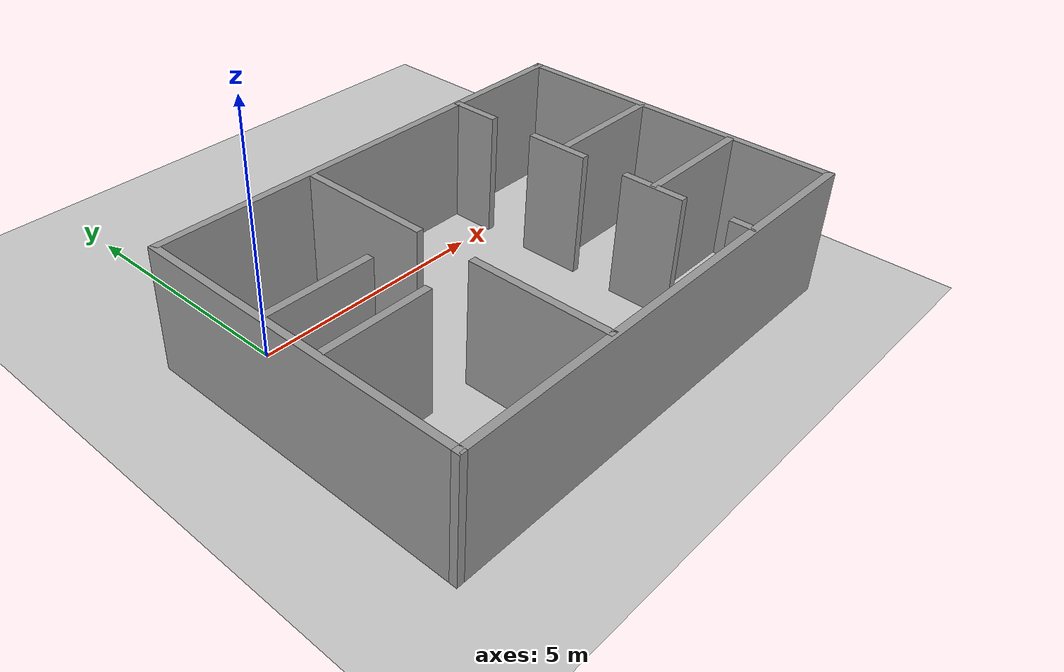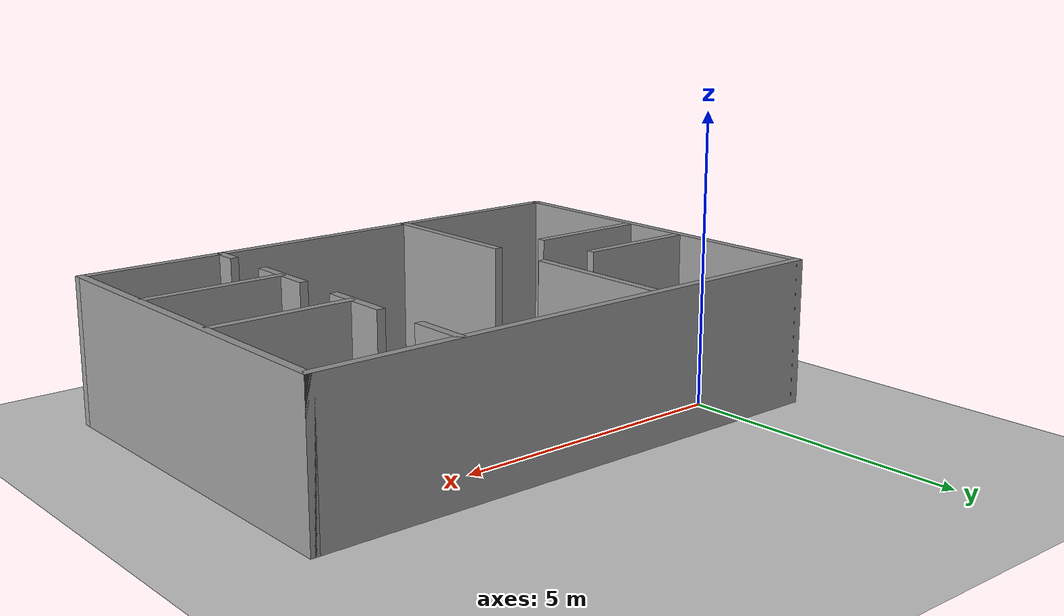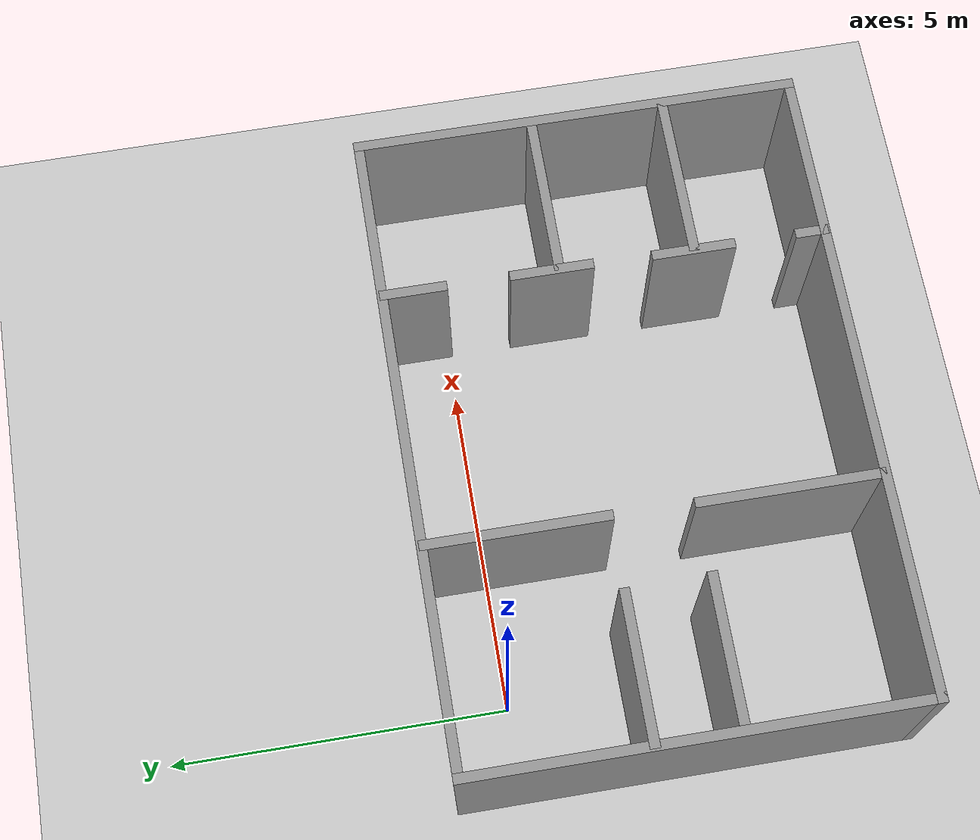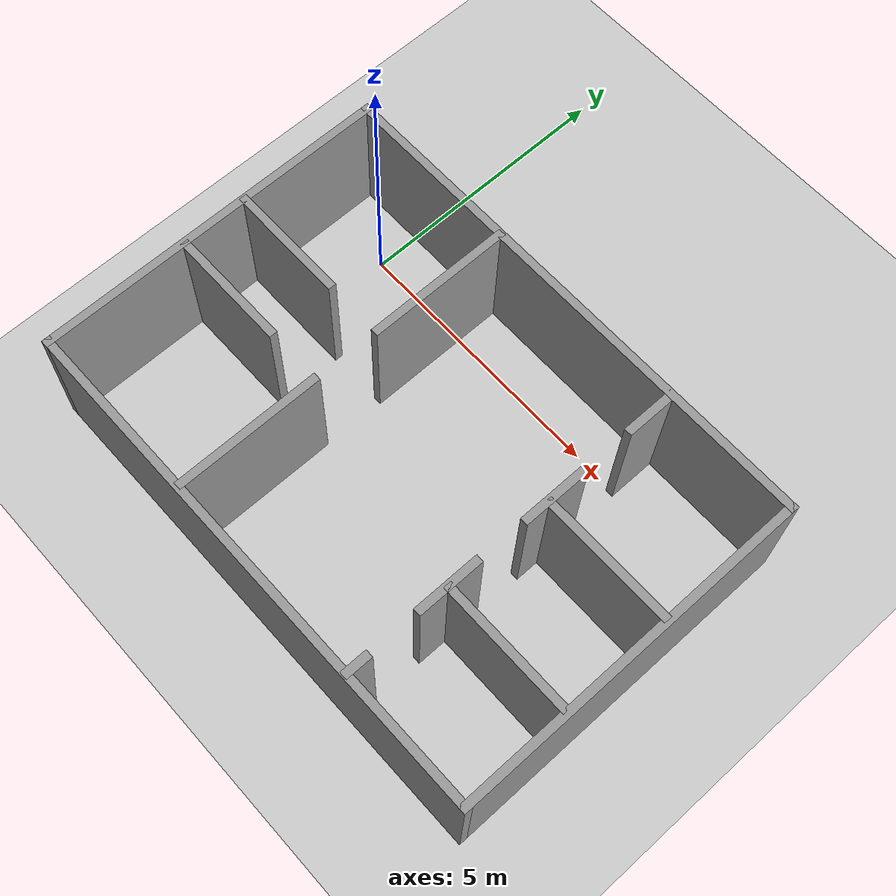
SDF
<sdf version="1.7">
 <world name="default">
  <light name="sun" type="directional">
   <pose>0 0 10 0 -0 0</pose>
   <diffuse>0.8 0.8 0.8 1</diffuse>
   <specular>0.2 0.2 0.2 1</specular>
   <attenuation>
    <range>1000</range>
    <constant>0.9</constant>
    <linear>0.01</linear>
    <quadratic>0.001</quadratic>
   </attenuation>
   <direction>-0.5 0.1 -0.9</direction>
   <spot><inner_angle>0</inner_angle><outer_angle>0</outer_angle><falloff>0</falloff></spot>
  </light>
  <model name="ground_plane">
   <static>1</static>
   <link name="link">
    <collision name="collision">
     <geometry><plane><normal>0 0 1</normal><size>100 100</size></plane></geometry>
     <surface>
      <contact><collide_bitmask>65535</collide_bitmask></contact>
      <friction><ode><mu>100</mu><mu2>50</mu2></ode></friction>
     </surface>
    </collision>
    <visual name="visual">
     <cast_shadows>0</cast_shadows>
     <geometry><plane><normal>0 0 1</normal><size>100 100</size></plane></geometry>
     <material>
      <script><uri>file://media/materials/scripts/gazebo.material</uri><name>Gazebo/Grey</name></script>
     </material>
    </visual>
   </link>
  </model>
  <gravity>0 0 -9.8</gravity>
  <magnetic_field>6e-06 2.3e-05 -4.2e-05</magnetic_field>
  <atmosphere type="adiabatic"/>
  <physics type="ode">
   <max_step_size>0.003</max_step_size>
   <real_time_factor>1</real_time_factor>
   <real_time_update_rate>1000</real_time_update_rate>
  </physics>
  <scene><ambient>0.4 0.4 0.4 1</ambient><background>0.7 0.7 0.7 1</background><shadows>1</shadows></scene>
  <spherical_coordinates>
   <surface_model>EARTH_WGS84</surface_model>
   <latitude_deg>0</latitude_deg>
   <longitude_deg>0</longitude_deg>
   <elevation>0</elevation>
   <heading_deg>0</heading_deg>
  </spherical_coordinates>
  <model name="laber_true">
   <pose>3.50101 -2.41106 0 0 -0 0</pose>
   <link name="Wall_0">
    <collision name="Wall_0_Collision">
     <geometry><box><size>9.75 0.15 2.5</size></box></geometry>
     <pose>0 0 1.25 0 -0 0</pose>
    </collision>
    <visual name="Wall_0_Visual">
     <pose>0 0 1.25 0 -0 0</pose>
     <geometry><box><size>9.75 0.15 2.5</size></box></geometry>
     <material>
      <script><uri>file://media/materials/scripts/gazebo.material</uri><name>Gazebo/Grey</name></script>
      <ambient>1 1 1 1</ambient>
     </material>
     <meta><layer>0</layer></meta>
    </visual>
    <pose>-0 3.3 0 0 -0 0</pose>
   </link>
   <link name="Wall_1">
    <collision name="Wall_1_Collision">
     <geometry><box><size>6.75 0.15 2.5</size></box></geometry>
     <pose>0 0 1.25 0 -0 0</pose>
    </collision>
    <visual name="Wall_1_Visual">
     <pose>0 0 1.25 0 -0 0</pose>
     <geometry><box><size>6.75 0.15 2.5</size></box></geometry>
     <material>
      <script><uri>file://media/materials/scripts/gazebo.material</uri><name>Gazebo/Grey</name></script>
      <ambient>1 1 1 1</ambient>
     </material>
     <meta><layer>0</layer></meta>
    </visual>
    <pose>4.8 -0 0 0 -0 -1.5708</pose>
   </link>
   <link name="Wall_12">
    <collision name="Wall_12_Collision">
     <geometry><box><size>2.75 0.15 2.5</size></box></geometry>
     <pose>0 0 1.25 0 -0 0</pose>
    </collision>
    <visual name="Wall_12_Visual">
     <pose>0 0 1.25 0 -0 0</pose>
     <geometry><box><size>2.75 0.15 2.5</size></box></geometry>
     <material>
      <script><uri>file://media/materials/scripts/gazebo.material</uri><name>Gazebo/Grey</name></script>
      <ambient>1 1 1 1</ambient>
     </material>
     <meta><layer>0</layer></meta>
    </visual>
    <pose>-1.54685 -1.93526 0 0 -0 -1.5708</pose>
   </link>
   <link name="Wall_14">
    <collision name="Wall_14_Collision">
     <geometry><box><size>1 0.15 2.5</size></box></geometry>
     <pose>0 0 1.25 0 -0 0</pose>
    </collision>
    <visual name="Wall_14_Visual">
     <pose>0 0 1.25 0 -0 0</pose>
     <geometry><box><size>1 0.15 2.5</size></box></geometry>
     <material>
      <script><uri>file://media/materials/scripts/gazebo.material</uri><name>Gazebo/Grey</name></script>
      <ambient>1 1 1 1</ambient>
     </material>
     <meta><layer>0</layer></meta>
    </visual>
    <pose>2.31846 2.84002 0 0 -0 -1.5708</pose>
   </link>
   <link name="Wall_16">
    <collision name="Wall_16_Collision">
     <geometry><box><size>1.25 0.15 2.5</size></box></geometry>
     <pose>0 0 1.25 0 -0 0</pose>
    </collision>
    <visual name="Wall_16_Visual">
     <pose>0 0 1.25 0 -0 0</pose>
     <geometry><box><size>1.25 0.15 2.5</size></box></geometry>
     <material>
      <script><uri>file://media/materials/scripts/gazebo.material</uri><name>Gazebo/Grey</name></script>
      <ambient>1 1 1 1</ambient>
     </material>
     <meta><layer>0</layer></meta>
    </visual>
    <pose>2.31846 0.791113 0 0 -0 -1.5708</pose>
   </link>
   <link name="Wall_18">
    <collision name="Wall_18_Collision">
     <geometry><box><size>2.5 0.15 2.5</size></box></geometry>
     <pose>0 0 1.25 0 -0 0</pose>
    </collision>
    <visual name="Wall_18_Visual">
     <pose>0 0 1.25 0 -0 0</pose>
     <geometry><box><size>2.5 0.15 2.5</size></box></geometry>
     <material>
      <script><uri>file://media/materials/scripts/gazebo.material</uri><name>Gazebo/Grey</name></script>
      <ambient>1 1 1 1</ambient>
     </material>
     <meta><layer>0</layer></meta>
    </visual>
    <pose>3.54592 0.676491 0 0 -0 0</pose>
   </link>
   <link name="Wall_2">
    <collision name="Wall_2_Collision">
     <geometry><box><size>9.75 0.15 2.5</size></box></geometry>
     <pose>0 0 1.25 0 -0 0</pose>
    </collision>
    <visual name="Wall_2_Visual">
     <pose>0 0 1.25 0 -0 0</pose>
     <geometry><box><size>9.75 0.15 2.5</size></box></geometry>
     <material>
      <script><uri>file://media/materials/scripts/gazebo.material</uri><name>Gazebo/Grey</name></script>
      <ambient>1 1 1 1</ambient>
     </material>
     <meta><layer>0</layer></meta>
    </visual>
    <pose>-0 -3.3 0 0 -0 3.14159</pose>
   </link>
   <link name="Wall_20">
    <collision name="Wall_20_Collision">
     <geometry><box><size>1.25 0.15 2.5</size></box></geometry>
     <pose>0 0 1.25 0 -0 0</pose>
    </collision>
    <visual name="Wall_20_Visual">
     <pose>0 0 1.25 0 -0 0</pose>
     <geometry><box><size>1.25 0.15 2.5</size></box></geometry>
     <material>
      <script><uri>file://media/materials/scripts/gazebo.material</uri><name>Gazebo/Grey</name></script>
      <ambient>1 1 1 1</ambient>
     </material>
     <meta><layer>0</layer></meta>
    </visual>
    <pose>2.30097 -1.32519 0 0 -0 -1.5708</pose>
   </link>
   <link name="Wall_22">
    <collision name="Wall_22_Collision">
     <geometry><box><size>2.5 0.15 2.5</size></box></geometry>
     <pose>0 0 1.25 0 -0 0</pose>
    </collision>
    <visual name="Wall_22_Visual">
     <pose>0 0 1.25 0 -0 0</pose>
     <geometry><box><size>2.5 0.15 2.5</size></box></geometry>
     <material>
      <script><uri>file://media/materials/scripts/gazebo.material</uri><name>Gazebo/Grey</name></script>
      <ambient>1 1 1 1</ambient>
     </material>
     <meta><layer>0</layer></meta>
    </visual>
    <pose>3.52843 -1.33487 0 0 -0 0</pose>
   </link>
   <link name="Wall_24">
    <collision name="Wall_24_Collision">
     <geometry><box><size>0.5 0.15 2.5</size></box></geometry>
     <pose>0 0 1.25 0 -0 0</pose>
    </collision>
    <visual name="Wall_24_Visual">
     <pose>0 0 1.25 0 -0 0</pose>
     <geometry><box><size>0.5 0.15 2.5</size></box></geometry>
     <material>
      <script><uri>file://media/materials/scripts/gazebo.material</uri><name>Gazebo/Grey</name></script>
      <ambient>1 1 1 1</ambient>
     </material>
     <meta><layer>0</layer></meta>
    </visual>
    <pose>2.30097 -3.10126 0 0 -0 1.5708</pose>
   </link>
   <link name="Wall_3">
    <collision name="Wall_3_Collision">
     <geometry><box><size>6.75 0.15 2.5</size></box></geometry>
     <pose>0 0 1.25 0 -0 0</pose>
    </collision>
    <visual name="Wall_3_Visual">
     <pose>0 0 1.25 0 -0 0</pose>
     <geometry><box><size>6.75 0.15 2.5</size></box></geometry>
     <material>
      <script><uri>file://media/materials/scripts/gazebo.material</uri><name>Gazebo/Grey</name></script>
      <ambient>1 1 1 1</ambient>
     </material>
     <meta><layer>0</layer></meta>
    </visual>
    <pose>-4.8 -0 0 0 -0 1.5708</pose>
   </link>
   <link name="Wall_5">
    <collision name="Wall_5_Collision">
     <geometry><box><size>2.75 0.15 2.5</size></box></geometry>
     <pose>0 0 1.25 0 -0 0</pose>
    </collision>
    <visual name="Wall_5_Visual">
     <pose>0 0 1.25 0 -0 0</pose>
     <geometry><box><size>2.75 0.15 2.5</size></box></geometry>
     <material>
      <script><uri>file://media/materials/scripts/gazebo.material</uri><name>Gazebo/Grey</name></script>
      <ambient>1 1 1 1</ambient>
     </material>
     <meta><layer>0</layer></meta>
    </visual>
    <pose>-1.52936 1.96502 0 0 -0 -1.5708</pose>
   </link>
   <link name="Wall_7">
    <collision name="Wall_7_Collision">
     <geometry><box><size>2.25 0.15 2.5</size></box></geometry>
     <pose>0 0 1.25 0 -0 0</pose>
    </collision>
    <visual name="Wall_7_Visual">
     <pose>0 0 1.25 0 -0 0</pose>
     <geometry><box><size>2.25 0.15 2.5</size></box></geometry>
     <material>
      <script><uri>file://media/materials/scripts/gazebo.material</uri><name>Gazebo/Grey</name></script>
      <ambient>1 1 1 1</ambient>
     </material>
     <meta><layer>0</layer></meta>
    </visual>
    <pose>-3.71502 0.64151 0 0 -0 0</pose>
   </link>
   <link name="Wall_9">
    <collision name="Wall_9_Collision">
     <geometry><box><size>2.25 0.15 2.5</size></box></geometry>
     <pose>0 0 1.25 0 -0 0</pose>
    </collision>
    <visual name="Wall_9_Visual">
     <pose>0 0 1.25 0 -0 0</pose>
     <geometry><box><size>2.25 0.15 2.5</size></box></geometry>
     <material>
      <script><uri>file://media/materials/scripts/gazebo.material</uri><name>Gazebo/Grey</name></script>
      <ambient>1 1 1 1</ambient>
     </material>
     <meta><layer>0</layer></meta>
    </visual>
    <pose>-3.68004 -0.600284 0 0 -0 0</pose>
   </link>
   <static>1</static>
  </model>
 </world>
</sdf>
